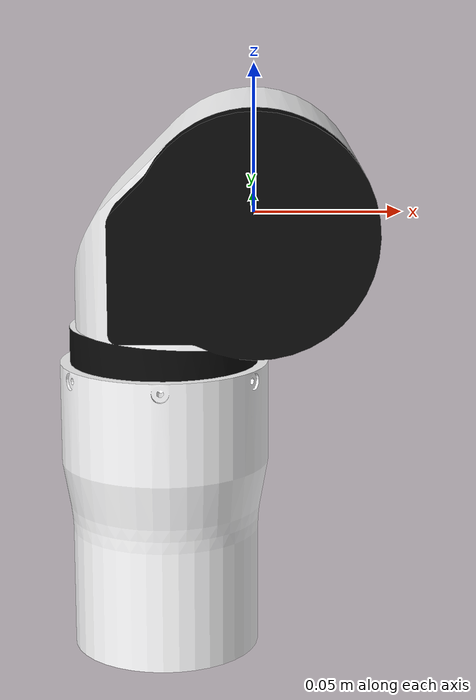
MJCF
<mujoco model="LINK_17">
  <default>
    <default class="visual">
      <geom group="2" type="mesh" contype="0" conaffinity="0"/>
    </default>
    <default class="collision">
      <geom group="3" type="mesh"/>
    </default>
  </default>
  <asset>
    <material name="10,10,10" specular="0.039216" shininess="1.0" rgba="0.039216 0.039216 0.039216 1.000000"/>
    <material name="254,254,255" specular="0.9973853333333333" shininess="1.0" rgba="0.996078 0.996078 1.000000 1.000000"/>
    <mesh file="LINK_17_0.obj"/>
    <mesh file="LINK_17_1.obj"/>
    <mesh file="LINK_17_collision_0.obj"/>
    <mesh file="LINK_17_collision_1.obj"/>
    <mesh file="LINK_17_collision_2.obj"/>
    <mesh file="LINK_17_collision_3.obj"/>
  </asset>
  <worldbody>
    <body name="LINK_17">
      <geom mesh="LINK_17_0" material="254,254,255" class="visual"/>
      <geom mesh="LINK_17_1" material="10,10,10" class="visual"/>
      <geom mesh="LINK_17_collision_0" rgba="0.04521321822936897 0.8068524424955614 0.7883846811855026 1" class="collision"/>
      <geom mesh="LINK_17_collision_1" rgba="0.7787177272422275 0.49701794605048144 0.8737500564664831 1" class="collision"/>
      <geom mesh="LINK_17_collision_2" rgba="0.12232395933366935 0.32690323210772665 0.6036384379251845 1" class="collision"/>
      <geom mesh="LINK_17_collision_3" rgba="0.03851057131141322 0.08928874787365793 0.4716156929768385 1" class="collision"/>
    </body>
  </worldbody>
</mujoco>
